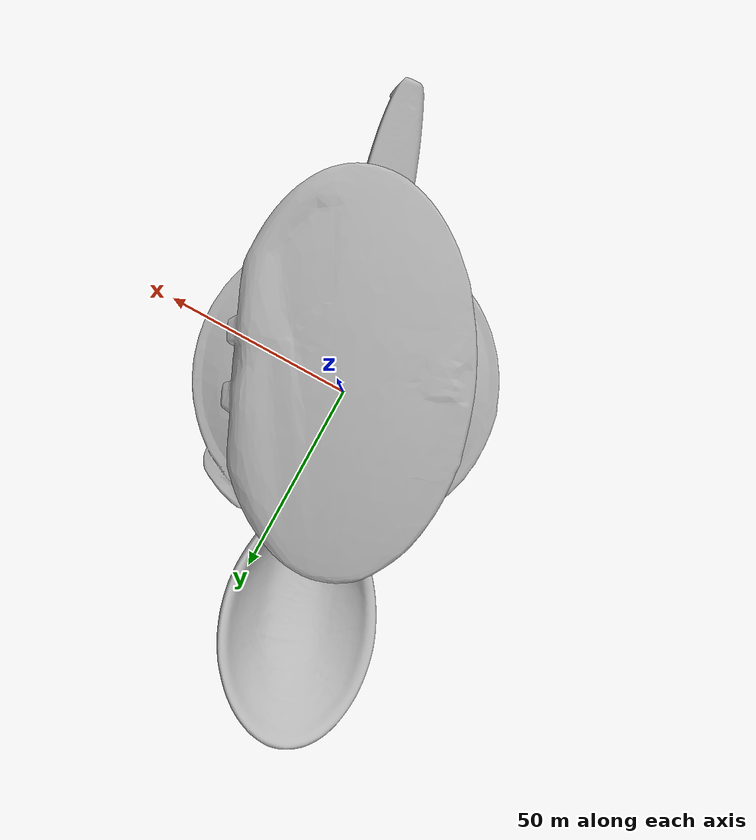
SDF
<sdf version="1.4">
 <world name="default">
  <light name="light1" type="point">
   <pose>0 0 1 0 0 0</pose>
   <diffuse>3 3 3 1</diffuse>
   <specular>3 3 3 1</specular>
  </light>
  <light name="light2" type="point">
   <pose>0 0.5 2 0 0 0</pose>
   <diffuse>1 1 1 1</diffuse>
   <specular>1 1 1 1</specular>
  </light>
  <light name="light3" type="point">
   <pose>0 0.5 2 0 0 0</pose>
   <diffuse>3 3 3 1</diffuse>
   <specular>3 3 3 1</specular>
  </light>
  <scene><ambient>0.7 0.7 0.7</ambient></scene>
  <model name="bottle1">
   <link name="link_bottle1">
    <collision name="default">
     <geometry>
      <mesh><uri>model://green_arrow/collision_meshes/collision.obj</uri><scale>1.0 1.0 1.0</scale></mesh>
     </geometry>
     <surface>
      <friction><ode><mu>0.5</mu><mu2>0.5</mu2></ode></friction>
      <contact><ode><max_vel>0</max_vel><min_depth>0.0001</min_depth><kp>1e8</kp></ode></contact>
     </surface>
    </collision>
    <visual name="default">
     <geometry>
      <mesh><uri>model://green_arrow/visual_meshes/visual.dae</uri><scale>1.0 1.0 1.0</scale></mesh>
     </geometry>
    </visual>
    <inertial>
     <mass>0.159866601228714</mass>
     <pose>0.0005358478520065546 -0.0008270691614598036 0.0022109695710241795 -0.0633227561078847 0.012984243694000861 0.6740794776591725</pose>
     <inertia>
      <ixx>0.00011596808</ixx>
      <iyy>0.00011579238</iyy>
      <izz>7.488036e-05</izz>
      <ixy>0</ixy>
      <ixz>0</ixz>
      <iyz>0</iyz>
     </inertia>
    </inertial>
   </link>
   <pose>-0.06788922846317291 -0.19338957965373993 0.038961660116910934 0.045284594153324205 0.024256078869625032 -1.073123585216059</pose>
  </model>
  <model name="bottle2">
   <link name="link_bottle2">
    <collision name="default">
     <geometry>
      <mesh><uri>model://conditioner/collision_meshes/collision.obj</uri><scale>1.0 1.0 1.0</scale></mesh>
     </geometry>
     <surface>
      <friction><ode><mu>0.5</mu><mu2>0.5</mu2></ode></friction>
      <contact><ode><max_vel>0</max_vel><min_depth>0.0001</min_depth><kp>1e8</kp></ode></contact>
     </surface>
    </collision>
    <visual name="default">
     <geometry>
      <mesh><uri>model://conditioner/visual_meshes/visual.dae</uri><scale>1.0 1.0 1.0</scale></mesh>
     </geometry>
    </visual>
    <inertial>
     <mass>0.1887805312871933</mass>
     <pose>-0.00055994390277192 -0.00017297487647738308 0.004359682556241751 -0.005038374268360293 0.015306043554332214 0.015072361860715313</pose>
     <inertia>
      <ixx>0.00041066532</ixx>
      <iyy>0.00043991112</iyy>
      <izz>6.3318876e-05</izz>
      <ixy>0</ixy>
      <ixz>0</ixz>
      <iyz>0</iyz>
     </inertia>
    </inertial>
   </link>
   <pose>0.14805808663368225 -0.281295508146286 0.08122976124286652 0.03689225323158539 -0.015660130443341202 -1.1731156343779687</pose>
  </model>
  <model name="silverware1">
   <link name="link_silverware1">
    <collision name="default">
     <geometry>
      <mesh><uri>model://doraemon_spoon/collision_meshes/collision.obj</uri><scale>1.0 1.0 1.0</scale></mesh>
     </geometry>
     <surface>
      <friction><ode><mu>0.5</mu><mu2>0.5</mu2></ode></friction>
      <contact><ode><max_vel>0</max_vel><min_depth>0.0001</min_depth><kp>1e8</kp></ode></contact>
     </surface>
    </collision>
    <visual name="default">
     <geometry>
      <mesh><uri>model://doraemon_spoon/visual_meshes/visual.dae</uri><scale>1.0 1.0 1.0</scale></mesh>
     </geometry>
    </visual>
    <inertial>
     <mass>0.029215902090072632</mass>
     <pose>-0.022165078669786453 -0.0006374581134878099 -0.003332544816657901 -0.009147069561506448 0.07380416816022378 -0.014123831282405222</pose>
     <inertia>
      <ixx>2.2884674e-06</ixx>
      <iyy>6.499588e-05</iyy>
      <izz>6.610089e-05</izz>
      <ixy>0</ixy>
      <ixz>0</ixz>
      <iyz>0</iyz>
     </inertia>
    </inertial>
   </link>
   <pose>0.0061949980445206165 -0.25314682722091675 0.01473933644592762 0.2787994079454092 -0.01033432359780012 -1.2799094623006855</pose>
  </model>
  <model name="stationery1">
   <link name="link_stationery1">
    <collision name="default">
     <geometry>
      <mesh><uri>model://correction_fuid/collision_meshes/collision.obj</uri><scale>1.0 1.0 1.0</scale></mesh>
     </geometry>
     <surface>
      <friction><ode><mu>0.5</mu><mu2>0.5</mu2></ode></friction>
      <contact><ode><max_vel>0</max_vel><min_depth>0.0001</min_depth><kp>1e8</kp></ode></contact>
     </surface>
    </collision>
    <visual name="default">
     <geometry>
      <mesh><uri>model://correction_fuid/visual_meshes/visual.dae</uri><scale>1.0 1.0 1.0</scale></mesh>
     </geometry>
    </visual>
    <inertial>
     <mass>0.02664039097726345</mass>
     <pose>-0.00012557733862195164 -0.0009722907561808825 -0.001618212671019137 -0.010846611490809042 0.019488348158978066 -0.015992455472155966</pose>
     <inertia>
      <ixx>2.5801672e-05</ixx>
      <iyy>1.5615498e-06</iyy>
      <izz>2.6473212e-05</izz>
      <ixy>0</ixy>
      <ixz>0</ixz>
      <iyz>0</iyz>
     </inertia>
    </inertial>
   </link>
   <pose>0.20771881937980652 -0.03831415995955467 0.00966718327254057 -0.007301141020586115 -0.02249663232158993 3.124781747970468</pose>
  </model>
  <model name="bowl1">
   <link name="link_bowl1">
    <collision name="default">
     <geometry>
      <mesh><uri>model://doraemon_bowl/collision_meshes/collision.obj</uri><scale>1.0 1.0 1.0</scale></mesh>
     </geometry>
     <surface>
      <friction><ode><mu>0.5</mu><mu2>0.5</mu2></ode></friction>
      <contact><ode><max_vel>0</max_vel><min_depth>0.0001</min_depth><kp>1e8</kp></ode></contact>
     </surface>
    </collision>
    <visual name="default">
     <geometry>
      <mesh><uri>model://doraemon_bowl/visual_meshes/visual.dae</uri><scale>1.0 1.0 1.0</scale></mesh>
     </geometry>
    </visual>
    <inertial>
     <mass>0.0632677748799324</mass>
     <pose>-0.014629557728767395 0.00048571318620815873 -0.0020864882972091436 -0.005093978566849342 -0.10568406006641042 -0.026426380562233804</pose>
     <inertia>
      <ixx>8.773087e-05</ixx>
      <iyy>0.00011545301</iyy>
      <izz>0.00016985848</izz>
      <ixy>0</ixy>
      <ixz>0</ixz>
      <iyz>0</iyz>
     </inertia>
    </inertial>
   </link>
   <pose>0.018505115061998367 -0.036619871854782104 0.026035480201244354 0.005053997845933537 0.0037284612059098935 2.7793003647225523</pose>
  </model>
  <model name="cup1">
   <link name="link_cup1">
    <collision name="default">
     <geometry>
      <mesh><uri>model://doraemon_cup/collision_meshes/collision.obj</uri><scale>1.0 1.0 1.0</scale></mesh>
     </geometry>
     <surface>
      <friction><ode><mu>0.5</mu><mu2>0.5</mu2></ode></friction>
      <contact><ode><max_vel>0</max_vel><min_depth>0.0001</min_depth><kp>1e8</kp></ode></contact>
     </surface>
    </collision>
    <visual name="default">
     <geometry>
      <mesh><uri>model://doraemon_cup/visual_meshes/visual.dae</uri><scale>1.0 1.0 1.0</scale></mesh>
     </geometry>
    </visual>
    <inertial>
     <mass>0.04278137534856796</mass>
     <pose>-0.0003292987239547074 -0.0016633577179163694 -0.0022522551007568836 0.19498548950287564 -0.013693938110122818 -0.3205458650037051</pose>
     <inertia>
      <ixx>5.8507427e-05</ixx>
      <iyy>5.6580026e-05</iyy>
      <izz>4.623892e-05</izz>
      <ixy>0</ixy>
      <ixz>0</ixz>
      <iyz>0</iyz>
     </inertia>
    </inertial>
   </link>
   <pose>0.08582957088947296 -0.1753147542476654 0.046231772750616074 -0.0120957297748257 -0.008428217409370664 0.18364710070740306</pose>
  </model>
  <model name="plate1">
   <link name="link_plate1">
    <collision name="default">
     <geometry>
      <mesh><uri>model://hello_kitty_plate/collision_meshes/collision.obj</uri><scale>1.0 1.0 1.0</scale></mesh>
     </geometry>
     <surface>
      <friction><ode><mu>0.5</mu><mu2>0.5</mu2></ode></friction>
      <contact><ode><max_vel>0</max_vel><min_depth>0.0001</min_depth><kp>1e8</kp></ode></contact>
     </surface>
    </collision>
    <visual name="default">
     <geometry>
      <mesh><uri>model://hello_kitty_plate/visual_meshes/visual.dae</uri><scale>1.0 1.0 1.0</scale></mesh>
     </geometry>
    </visual>
    <inertial>
     <mass>0.03555070236325264</mass>
     <pose>0.0073143006302416325 0.0002893744967877865 -0.0027947186026722193 -0.00010431820965322355 -0.007054446463638022 -0.014449070801334592</pose>
     <inertia>
      <ixx>6.855243e-05</ixx>
      <iyy>0.00012937908</iyy>
      <izz>0.0001964492</izz>
      <ixy>0</ixy>
      <ixz>0</ixz>
      <iyz>0</iyz>
     </inertia>
    </inertial>
   </link>
   <pose>0.1959499567747116 -0.04237189143896103 0.023194583132863045 -0.10192289232753068 -0.13394525479936636 0.9002172021176352</pose>
  </model>
  <model name="box4">
   <link name="link_box4">
    <collision name="default">
     <geometry>
      <mesh><uri>model://wooden_puzzle1/collision_meshes/collision.obj</uri><scale>1.0 1.0 1.0</scale></mesh>
     </geometry>
     <surface>
      <friction><ode><mu>0.5</mu><mu2>0.5</mu2></ode></friction>
      <contact><ode><max_vel>0</max_vel><min_depth>0.0001</min_depth><kp>1e8</kp></ode></contact>
     </surface>
    </collision>
    <visual name="default">
     <geometry>
      <mesh><uri>model://wooden_puzzle1/visual_meshes/visual.dae</uri><scale>1.0 1.0 1.0</scale></mesh>
     </geometry>
    </visual>
    <inertial>
     <mass>0.03278602659702301</mass>
     <pose>-0.00017350679263472557 7.972260937094688e-05 -9.191554272547364e-05 -0.07784358361794479 -0.263610796923839 -0.5528741327723476</pose>
     <inertia>
      <ixx>6.1858273e-06</ixx>
      <iyy>6.0667485e-06</iyy>
      <izz>6.139123e-06</izz>
      <ixy>0</ixy>
      <ixz>0</ixz>
      <iyz>0</iyz>
     </inertia>
    </inertial>
   </link>
   <pose>0.05210019648075104 0.18312838673591614 0.0168019887059927 0.010516016231245867 -0.009457587538525094 0.12685076556939753</pose>
  </model>
  <physics type="ode">
   <max_contacts>50</max_contacts>
   <ode>
    <solver><type>quick</type><iters>75</iters></solver>
    <constraints>
     <contact_max_correcting_vel>0</contact_max_correcting_vel>
     <contact_surface_layer>0</contact_surface_layer>
    </constraints>
   </ode>
  </physics>
 </world>
</sdf>
